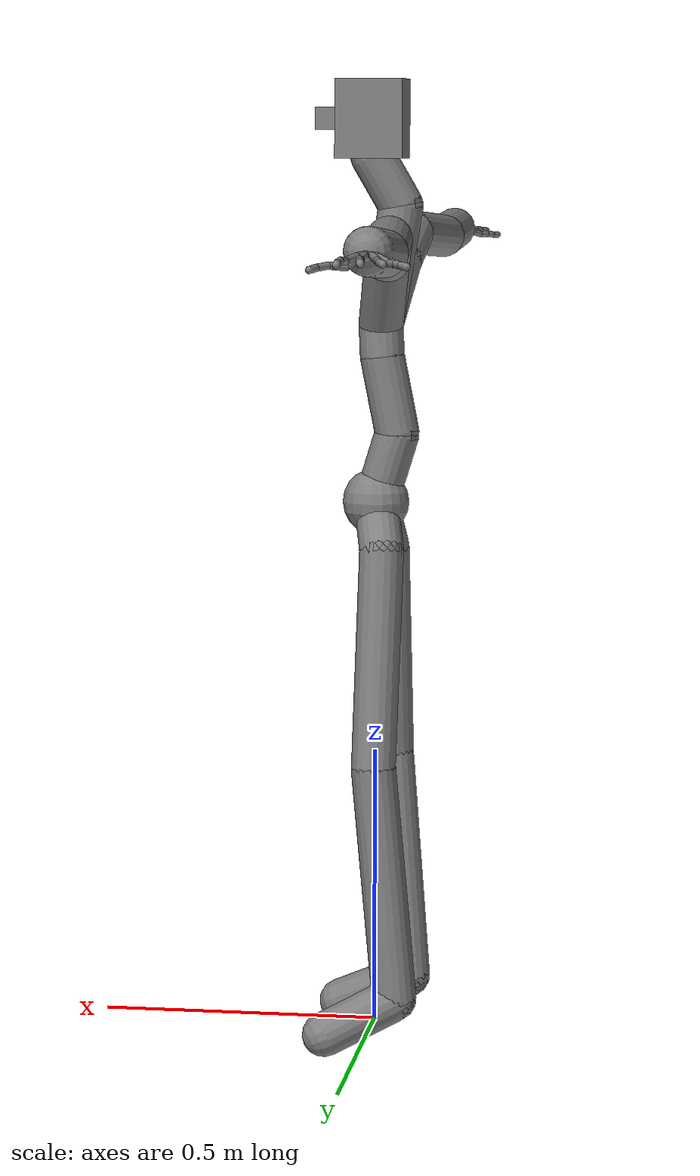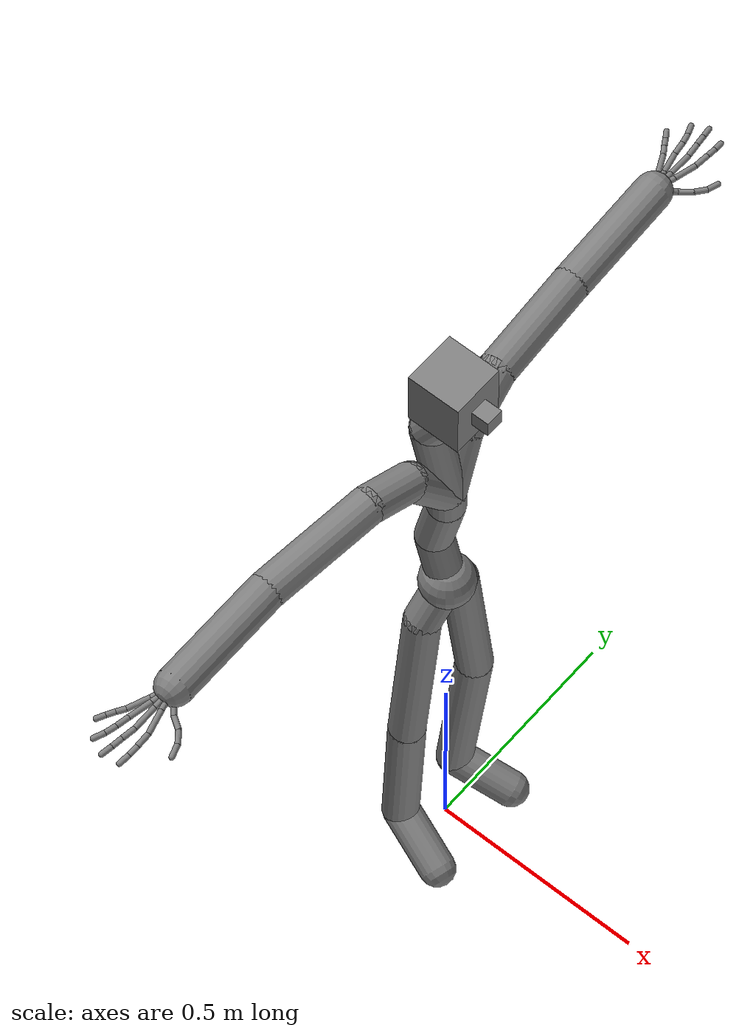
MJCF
<mujoco model="smplh-rig">
    <!--
            Robot Intelligence Lab
            SMPL-H Robot Mini model

            @ Contact us : taemoon-jeong (motor_moon94@korea.ac.kr)
    -->
    <statistic extent="2" center="0 0 1"/>
    <compiler  inertiafromgeom="true" angle="radian" autolimits="true"/>

    <default>
        <site size=".04" group="3"/>
        <motor ctrlrange="-1. 1." ctrllimited="true"/>
        <default class="body">

            <!-- joints -->
            <joint type="hinge" damping="1" stiffness="5" armature=".01" limited="true" solimplimit="0 .99 .01"/>
            <default class="joint_big">
                <joint damping="5" stiffness="10"/>
                <default class="hip_x">
                <joint/>
                </default>
                <default class="hip_z">
                <joint/>
                </default>
                <default class="hip_y">
                <joint axis="0 1 0"/>
                </default>
                <default class="joint_big_stiff">
                <joint stiffness="20"/>
                </default>
            </default>

            <!-- tracking site -->
            <default class="tracking_site">
                <site type="sphere" size="0.027" rgba="1 0 0 1" group="3"/>
            </default>
        </default>
    </default>

    <visual>
        <rgba haze="0.15 0.25 0.35 1"/>
        <quality shadowsize="2048"/>
        <global offwidth="800" offheight="800"/>
    </visual>

    <asset>
        <texture name="texgeom" type="cube" builtin="flat" mark="cross" width="127" height="1278"
            rgb1="0.8 0.6 0.4" rgb2="0.8 0.6 0.4" markrgb="1 1 1" random="0.01"/>
        <material name="matgeom" texture="texgeom" texuniform="true" rgba="0.8 0.6 0.4 1.0"/>
    </asset>

    <worldbody>
        <body name="base" pos="0 0 0.956">
            <freejoint name="base"/>
            <geom name="base" type="sphere" pos="0 0 0" size="0.06"/>
            <body name="pelvis" pos="0 0 0" euler="0 0 0" >
                <joint name="pelvis1" type="hinge" pos="0 0 0" axis="1 0 0" range="-1.5 1.5" armature="0.02" class="joint_big"/>
                <joint name="pelvis2" type="hinge" pos="0 0 0" axis="0 1 0" range="-1.5 1.5" armature="0.02" class="joint_big"/>
                <joint name="pelvis3" type="hinge" pos="0 0 0" axis="0 0 1" range="-1.5 1.5" armature="0.02" class="joint_big_stiff"/>
                <geom name="pelvis2spine1" type="capsule" fromto="0 0 0 -0.038385 0.004439 0.124404"  size="0.04"/>
                <site name="pelvis2spine1" type="capsule" fromto="0 0 0 -0.038385 0.004439 0.124404"  size="0.04" />

                <body name="spine1" pos="-0.038385 0.004439 0.124406" euler="0 0 0" >
                    <geom name="spine12spine2" type="capsule" fromto="0 0 0 0.026820 0.004488 0.137956"  size="0.04"/>
                    <joint name="spine1x" type="hinge" pos="0 0 0" axis="1 0 0" range="-1.5 1.5" armature="0.02" class="joint_big" />
                    <joint name="spine1y" type="hinge" pos="0 0 0" axis="0 1 0" range="-1.5 1.5" armature="0.02" class="joint_big" />
                    <joint name="spine1z" type="hinge" pos="0 0 0" axis="0 0 1" range="-1.5 1.5" armature="0.02" class="joint_big" />

                    <body name="spine2" pos="0.026820 0.004488 0.137956" euler="0 0 0">
                        <geom name="spine22spine3" type="capsule" fromto="0 0 0 0.002855 -0.002265 0.056032"  size="0.04"/>
                        <site name="spine22spine3" type="capsule" fromto="0 0 0 0.002855 -0.002265 0.056032"  size="0.04" />
                        <joint name="spine2x" type="hinge" pos="0 0 0" axis="1 0 0" range="-1.5 1.5" armature="0.02" class="joint_big" />
                        <joint name="spine2y" type="hinge" pos="0 0 0" axis="0 1 0" range="-1.5 1.5" armature="0.02" class="joint_big" />
                        <joint name="spine2z" type="hinge" pos="0 0 0" axis="0 0 1" range="-1.5 1.5" armature="0.02" class="joint_big" />

                        <body name="spine3" pos="0.002855 -0.002265 0.056032" euler="0 0 0">
                            <geom name="spine32neck" type="capsule" fromto="0 0 0 -0.033468 -0.013390 0.211635"  size="0.04"/>
                            <site name="spine32neck" type="capsule" fromto="0 0 0 -0.033468 -0.013390 0.211635"  size="0.04" />
                            <joint name="spine3x" type="hinge" pos="0 0 0" axis="1 0 0" range="-1.5 1.5" armature="0.02" class="joint_big" />
                            <joint name="spine3y" type="hinge" pos="0 0 0" axis="0 1 0" range="-1.5 1.5" armature="0.02" class="joint_big" />
                            <joint name="spine3z" type="hinge" pos="0 0 0" axis="0 0 1" range="-1.5 1.5" armature="0.02" class="joint_big" />

                            <body name="neck" pos="-0.033468 -0.013390 0.211635" euler="0 0 0">
                                <geom name="neck2head" type="capsule" fromto="0 0 0 0.050410 0.010113 0.088937"  size="0.04" />

                                <body name="head" pos="0.050410 0.010113 0.088937" euler="0 0 0">
                                    <site name="head" type="box" pos="0 0  0.06496965885" size="0.06 0.06 0.07" />
                                    <geom name="head" type="box" pos="0 0  0.06496965885" size="0.06 0.06 0.07" />
                                    <geom name="nose" type="box" pos="0.05 0  0.06496965885" size="0.05 0.02 0.02" />
                                    <joint name="head1" type="hinge" pos="0 0 0" axis="1 0 0" range="-1.57 1.57" armature="0.02" />
                                    <joint name="head2" type="hinge" pos="0 0 0" axis="0 1 0" range="-1.57 1.57" armature="0.02" />
                                    <joint name="head3" type="hinge" pos="0 0 0" axis="0 0 1" range="-1.57 1.57" armature="0.02" />
                                </body>
                            </body>

                            <geom name="spine32lcollar" type="capsule" fromto="0 0 0 -0.018898 0.071702 0.114000"  size="0.04" />
                            <body name="left_collar" pos="-0.018898 0.071702 0.114000" euler="0 0 0">
                                <geom name="lcollar2lshoulder" type="capsule" fromto="0 0 0 -0.019046 0.122921 0.045205"  size="0.04" />
                                <joint name="l_collar" type="hinge" pos="0 0 0" axis="1 0 0" range="-3.141592 3.141592" armature="0.0068"  />

                                <body name="left_shoulder" pos="-0.019046 0.122921 0.045205" euler="0 0 0">
                                    <geom name="lshoulder2lelbow" type="capsule" fromto="0 0 0 -0.022946 0.255332 -0.015649"  size="0.04" />
                                    <joint name="l_shoulder1" type="hinge" pos="0 0 0" axis="1 0 0" range="-3.141592 3.141592" armature="0.0068"  />
                                    <joint name="l_shoulder2" type="hinge" pos="0 0 0" axis="0 0 1" range="-3.141592 3.141592" armature="0.0051"  />
                                    <joint name="l_shoulder3" type="hinge" pos="0 0 0" axis="0 1 0" range="-3.141592 3.141592" armature="0.0051"  />

                                    <body name="left_elbow" pos="-0.022946 0.255332 -0.015649" euler="0 0 0">
                                        <geom name="lelbow2lwrist" type="capsule" fromto="0 0 0 -0.007375 0.265709 0.012698"  size="0.04" />
                                        <joint name="l_elbow" type="hinge" pos="0 0 0" axis="0 0 1" range="-2.61666666667 -0.01" armature="0.0028"  />
                                        <site name="tracking[lhand]" class="tracking_site" pos="-0.007375 0.265709 0.012698" />
                                        <body name="left_wrist" pos="-0.007375 0.265709 0.012698" euler="0 0 0">
                                            <geom name="lwrist2lindex0" type="capsule" fromto="0 0 0 0.011069 0.052936 -0.005513"  size="0.006" />
                                            <geom name="lwrist2lmiddle0" type="capsule" fromto="0 0 0 -0.001014 0.056910 -0.003942"  size="0.006" />
                                            <geom name="lwrist2lpinky0" type="capsule" fromto="0 0 0 -0.022191 0.043901 -0.007416"  size="0.006" />
                                            f<geom name="lwrist2lring0" type="capsule" fromto="0 0 0 -0.013294 0.050768 -0.004992"  size="0.006" />
                                            <geom name="lwrist2lthumb1" type="capsule" fromto="0 0 0 0.028838 0.042275 -0.023086"  size="0.006" />

                                            <joint name="l_wrist1" type="hinge" pos="0 0 0" axis="0 1 0" range="-1.570796 1.570796" damping="5" stiffness="0" armature="0.02" />
                                            <joint name="l_wrist2" type="hinge" pos="0 0 0" axis="0 0 1" range="-0.785398 0.785398" damping="5" stiffness="0" armature="0.02" />
                                            <joint name="l_wrist3" type="hinge" pos="0 0 0" axis="1 0 0" range="-0.785398 0.785398" damping="5" stiffness="0" armature="0.02" />

                                            <body name="left_index0" pos="0.011069 0.052936 -0.005513" euler="0 0 0">
                                                <geom name="lindex0-lindex1" type="capsule" fromto="0 0 0 0.011069 0.052936 -0.005513"  size="0.006" />
                                                <body name="left_index1" pos="0.011069 0.052936 -0.005513" euler="0 0 -0.206141">
                                                    <geom name="lindex1-lindex2" type="capsule" fromto="0 0 0 -0.003033 0.033130 0.001728"  size="0.006" />
                                                    <joint name="l_indexr" type="hinge" pos="0 0 0" axis="0 0 1" range="-0.261799 0.261799" damping="5" stiffness="0" armature="0.02" />
                                                    <joint name="l_index1" type="hinge" pos="0 0 0" axis="1 0 0" range="-0.628318 0" damping="5" stiffness="0" armature="0.02" />

                                                    <body name="left_index2" pos="-0.003033 0.033130 0.001728" euler="0 0 0.091304">
                                                        <geom name="lindex2-lindex3" type="capsule" fromto="0 0 0 -0.001843 0.023182 -0.002789"  size="0.006" />
                                                        <joint name="l_index2" type="hinge" pos="0 0 0" axis="1 0 0" range="-1.884955 0" damping="5" stiffness="0" armature="0.02" />

                                                        <body name="left_index3" pos="-0.001843 0.023182 -0.002789" euler="0 0 0.079354">
                                                            <!-- temporary geom value for finger tip -->
                                                            <geom name="lindex3-lindextip" type="capsule" fromto="0 0 0 -0.0015 0.02 -0.0025"  size="0.006" />
                                                            <joint name="l_index3" type="hinge" pos="0 0 0" axis="1 0 0" range="-1.256637 0" damping="5" stiffness="0" armature="0.02" />
                                                            <body name="left_index4" pos="-0.0015 0.02 -0.0025" euler="0 0 0"/>
                                                        </body>
                                                    </body>
                                                </body>
                                            </body>
                                            <body name="left_middle0" pos="-0.001014 0.056910 -0.003942" euler="0 0 0">
                                                <geom name="lmiddle0-lmiddle1" type="capsule" fromto="0 0 0 -0.001014 0.056910 -0.003942"  size="0.006" />
                                                <body name="left_middle1" pos="-0.001014 0.056910 -0.003942" euler="0 0 0.017807">
                                                    <geom name="lmiddle1-lmiddle2" type="capsule" fromto="0 0 0 -0.003115 0.031998 0.000394"  size="0.006" />
                                                    <joint name="l_middle1" type="hinge" pos="0 0 0" axis="1 0 0" range="-0.628318 0" damping="5" stiffness="0" armature="0.02" />

                                                    <body name="left_middle2" pos="-0.003115 0.031998 0.000394" euler="0 0 0.097038">
                                                        <geom name="lmiddle2-lmiddle3" type="capsule" fromto="0 0 0 -0.000460 0.024696 -0.002376"  size="0.006" />
                                                        <joint name="l_middle2" type="hinge" pos="0 0 0" axis="1 0 0" range="-1.884955 0" damping="5" stiffness="0" armature="0.02" />

                                                        <body name="left_middle3" pos="-0.000460 0.024696 -0.002376" euler="0 0 0.018625">
                                                            <geom name="lmiddl3-lmiddletip" type="capsule" fromto="0 0 0 -0.00045 0.024 -0.0023"  size="0.006" />
                                                            <joint name="l_middle3" type="hinge" pos="0 0 0" axis="1 0 0" range="-1.256637 0" damping="5" stiffness="0" armature="0.02" />
                                                            <body name="left_middle4" pos="-0.00045 0.024 -0.0023" euler="0 0 0"/>
                                                        </body>
                                                    </body>
                                                </body>
                                            </body>
                                            <body name="left_pinky0" pos="-0.022191 0.043901 -0.007416" euler="0 0 0">
                                                <geom name="lpinky0-lpinky1" type="capsule" fromto="0 0 0 -0.022191 0.043901 -0.007416"  size="0.006" />
                                                <body name="left_pinky1" pos="-0.022191 0.043901 -0.007416" euler="0 0 0.468016">
                                                    <geom name="lpinky1-lpinky2" type="capsule" fromto="0 0 0 -0.002127 0.020411 -0.000227"  size="0.006" />
                                                    <joint name="l_pinkyr" type="hinge" pos="0 0 0" axis="0 0 1" range="-0.523597 0.523597" damping="5" stiffness="0" armature="0.02" />
                                                    <joint name="l_pinky1" type="hinge" pos="0 0 0" axis="1 0 0" range="-0.628318 0" damping="5" stiffness="0" armature="0.02" />

                                                    <body name="left_pinky2" pos="-0.002127 0.020411 -0.000227" euler="0 0 0.103822">
                                                        <geom name="lpinky2-lpinky3" type="capsule" fromto="0 0 0 0.000708 0.019815 -0.001496"  size="0.006" />
                                                        <joint name="l_pinky2" type="hinge" pos="0 0 0" axis="1 0 0" range="-1.884955 0" damping="5" stiffness="0" armature="0.02" />

                                                        <body name="left_pinky3" pos="0.000708 0.019815 -0.001496" euler="0 0 -0.035726">
                                                            <geom name="lpinky3-lpinkytip" type="capsule" fromto="0 0 0 -0.0007 0.02 -0.0015"  size="0.006" />
                                                            <joint name="l_pinky3" type="hinge" pos="0 0 0" axis="1 0 0" range="-1.256637 0" damping="5" stiffness="0" armature="0.02" />
                                                            <body name="left_pinky4" pos="-0.0007 0.02 -0.0015" euler="0 0 0"/>
                                                        </body>
                                                    </body>
                                                </body>
                                            </body>
                                            <body name="left_ring0" pos="-0.013294 0.050768 -0.004992" euler="0 0 0">
                                                <geom name="lring0-lring1" type="capsule" fromto="0 0 0 -0.013294 0.050768 -0.004992"  size="0.006" />
                                                <body name="left_ring1" pos="-0.013294 0.050768 -0.004992" euler="0 0 0.256105">
                                                    <geom name="lring1-lring2" type="capsule" fromto="0 0 0 0.003936 0.029493 0.001011"  size="0.006" />
                                                    <joint name="l_ringr" type="hinge" pos="0 0 0" axis="0 0 1" range="-0.261799 0.261799" damping="5" stiffness="0" armature="0.02" />
                                                    <joint name="l_ring1" type="hinge" pos="0 0 0" axis="1 0 0" range="-0.628318 0" damping="5" stiffness="0" armature="0.02" />

                                                    <body name="left_ring2" pos="0.003936 0.029493 0.001011" euler="0 0 -0.132684">
                                                        <geom name="lring2-lring3" type="capsule" fromto="0 0 0 -0.003050 0.024423 -0.002075"  size="0.006" />
                                                        <joint name="l_ring2" type="hinge" pos="0 0 0" axis="1 0 0" range="-1.884955 0" damping="5" stiffness="0" armature="0.02" />

                                                        <body name="left_ring3" pos="-0.003050 0.024423 -0.002075" euler="0 0 0.124218">
                                                            <geom name="lring3-lringtip" type="capsule" fromto="0 0 0 -0.003 0.024 -0.002"  size="0.006" />
                                                            <joint name="l_ring3" type="hinge" pos="0 0 0" axis="1 0 0" range="-1.256637 0" damping="5" stiffness="0" armature="0.02" />
                                                            <body name="left_ring4" pos="-0.003 0.024 -0.002" euler="0 0 0"/>
                                                        </body>
                                                    </body>
                                                </body>
                                            </body>

                                            <body name="left_thumb1" pos="0.028838 0.042275 -0.023086" euler="0 0 0">
                                                <geom name="lthumb1-lthumb2" type="capsule" fromto="0 0 0 0.025959 0.018387 0.003174"  size="0.006" />
                                                <joint name="l_thumba" type="hinge" pos="0 0 0" axis="0 1 0" range="0 1.570796" damping="5" stiffness="0" armature="0.02" />
                                                    <joint name="l_thumbr" type="hinge" pos="0 0 0" axis="0 0 1" range="-0.523597 0.523597" damping="5" stiffness="0" armature="0.02" />

                                                    <body name="left_thumb2" pos="0.025959 0.018387 0.003174" euler="0 0 -0.954515">
                                                        <geom name="lthumb2-lthumb3" type="capsule" fromto="0 0 0 -0.009025 0.025780 -0.002574"  size="0.006" />
                                                        <joint name="l_thumb2" type="hinge" pos="0 0 0" axis="1 0 0" range="-1.831667 0" damping="5" stiffness="0" armature="0.02" />

                                                        <body name="left_thumb3" pos="-0.009025 0.025780 -0.002574" euler="0 0 0.336747">
                                                            <geom name="lthumb3-lthumbtip" type="capsule" fromto="0 0 0 -0.009 0.025 -0.0025"  size="0.006" />
                                                            <joint name="l_thumb3" type="hinge" pos="0 0 0" axis="1 0 0" range="-1.831667 0" damping="5" stiffness="0" armature="0.02" />
                                                            <body name="left_thumb4" pos="-0.009 0.025 -0.0025" euler="0 0 0"/>
                                                        </body>
                                                    </body>
                                            </body>
                                        </body>
                                    </body>
                                </body>
                            </body>

                            <geom name="spine2rcollar" type="capsule" fromto="0 0 0 -0.023707 -0.082954 0.112472"  size="0.04" />
                            <body name="right_collar" pos="-0.023707 -0.082954 0.112472" euler="0 0 0">
                                <geom name="rcollar2rshoulder" type="capsule" fromto="0 0 0 -0.008472 -0.113228 0.046853"  size="0.04" />
                                <joint name="r_collar" type="hinge" pos="0 0 0" axis="1 0 0" range="-3.141592 3.141592" armature="0.0068"  />

                                <body name="right_shoulder" pos="-0.008472 -0.113228 0.046853" euler="0 0 0">
                                    <geom name="rshoulder2relbow" type="capsule" fromto="0 0 0 -0.031269 -0.260127 -0.014369"  size="0.04" />
                                    <joint name="r_shoulder1" type="hinge" pos="0 0 0" axis="1 0 0" range="-3.141592 3.141592" armature="0.0068"  />
                                    <joint name="r_shoulder2" type="hinge" pos="0 0 0" axis="0 0 1" range="-3.141592 3.141592" armature="0.0051"  />
                                    <joint name="r_shoulder3" type="hinge" pos="0 0 0" axis="0 1 0" range="-3.141592 3.141592" armature="0.0051"  />

                                    <body name="right_elbow" pos="-0.031269 -0.260127 -0.014369" euler="0 0 0">
                                        <geom name="relbow2rwrist" type="capsule" fromto="0 0 0 0.006027 -0.269108 0.006794"  size="0.04" />
                                        <joint name="r_elbow" type="hinge" pos="0 0 0" axis="0 0 1" range="0.01 2.61666666667" armature="0.0028"  />
                                        <site name="tracking[rhand]" class="tracking_site" pos="0.006027 -0.269108 0.006794" />
                                        <body name="right_wrist" pos="0.006027 -0.269108 0.006794" euler="0 0 0">
                                            <geom name="rwrist2rindex0" type="capsule" fromto="0 0 0 0.013122 -0.052049 -0.004405"  size="0.006" />
                                            <geom name="rwrist2rmiddle0" type="capsule" fromto="0 0 0 0.000400 -0.056364 -0.002474"  size="0.006" />
                                            <geom name="rwrist2rpinky0" type="capsule" fromto="0 0 0 -0.021231 -0.043954 -0.006724"  size="0.006" />
                                            <geom name="rwrist2rring0" type="capsule" fromto="0 0 0 -0.012381 -0.050571 -0.003757"  size="0.006" />
                                            <geom name="rwrist2rthumb1" type="capsule" fromto="0 0 0 0.032093 -0.039326 -0.022098"  size="0.006" />

                                            <joint name="r_wrist1" type="hinge" pos="0 0 0" axis="0 1 0" range="-1.570796 1.570796" damping="5" stiffness="0" armature="0.02" />
                                            <joint name="r_wrist2" type="hinge" pos="0 0 0" axis="0 0 1" range="-0.785398 0.785398" damping="5" stiffness="0" armature="0.02" />
                                            <joint name="r_wrist3" type="hinge" pos="0 0 0" axis="1 0 0" range="-0.785398 0.785398" damping="5" stiffness="0" armature="0.02" />

                                            <body name="right_index0" pos="0.013122 -0.052049 -0.004405" euler="0 0 0">
                                                <geom name="rindex0-rindex1" type="capsule" fromto="0 0 0 0.013122 -0.052049 -0.004405"  size="0.006" />
                                                <body name="right_index1" pos="0.013122 -0.052049 -0.004405" euler="0 0 0.246960">
                                                    <geom name="rindex1-rindex2" type="capsule" fromto="0 0 0 -0.005775 -0.033242 0.002660"  size="0.006" />
                                                    <joint name="r_indexr" type="hinge" pos="0 0 0" axis="0 0 1" range="-0.261799 0.261799" damping="5" stiffness="0" armature="0.02" />
                                                    <joint name="r_index1" type="hinge" pos="0 0 0" axis="1 0 0" range="0 0.628318" damping="5" stiffness="0" armature="0.02" />

                                                    <body name="right_index2" pos="-0.005775 -0.033242 0.002660" euler="0 0 -0.172022">
                                                        <geom name="rindex2-rindex3" type="capsule" fromto="0 0 0 -0.002271 -0.023192 -0.002289"  size="0.006" />
                                                        <joint name="r_index2" type="hinge" pos="0 0 0" axis="1 0 0" range="0 1.884955" damping="5" stiffness="0" armature="0.02" />

                                                        <body name="right_index3" pos="-0.002271 -0.023192 -0.002289" euler="0 0 -0.097597">
                                                            <geom name="rindex3-rindextip" type="capsule" fromto="0 0 0 -0.0022 -0.0232 -0.0022"  size="0.006" />
                                                            <joint name="r_index3" type="hinge" pos="0 0 0" axis="1 0 0" range="0 1.256637" damping="5" stiffness="0" armature="0.02" />
                                                            <body name="right_index4" pos="-0.0022 -0.0232 -0.0022" euler="0 0 0"/>
                                                        </body>

                                                    </body>
                                                </body>
                                            </body>

                                            <body name="right_middle0" pos="0.000400 -0.056364 -0.002474" euler="0 0 0">
                                                <geom name="rmiddle0-rmiddle1" type="capsule" fromto="0 0 0 0.000400 -0.056364 -0.002474"  size="0.006" />
                                                <body name="right_middle1" pos="0.000400 -0.056364 -0.002474" euler="0 0 0.007097">
                                                    <geom name="rmiddle1-rmiddle2" type="capsule" fromto="0 0 0 -0.004165 -0.031760 0.001475"  size="0.006" />
                                                    <joint name="r_middle1" type="hinge" pos="0 0 0" axis="1 0 0" range="0 0.628318" damping="5" stiffness="0" armature="0.02" />

                                                    <body name="right_middle2" pos="-0.004165 -0.031760 0.001475" euler="0 0 -0.130410">
                                                        <geom name="rmiddle2-rmiddle3" type="capsule" fromto="0 0 0 -0.000753 -0.024398 -0.001846"  size="0.006" />
                                                        <joint name="r_middle2" type="hinge" pos="0 0 0" axis="1 0 0" range="0 1.884955" damping="5" stiffness="0" armature="0.02" />

                                                        <body name="right_middle3" pos="-0.000753 -0.024398 -0.001846" euler="0 0 -0.030843">
                                                            <geom name="rmiddle3-rmiddletip" type="capsule" fromto="0 0 0 -0.00075 -0.024 -0.0018"  size="0.006" />
                                                            <joint name="r_middle3" type="hinge" pos="0 0 0" axis="1 0 0" range="0 1.256637" damping="5" stiffness="0" armature="0.02" />
                                                            <body name="right_middle4" pos="-0.00075 -0.024 -0.0018" euler="0 0 0"/>
                                                        </body>
                                                    </body>
                                                </body>
                                            </body>

                                            <body name="right_pinky0" pos="-0.021231 -0.043954 -0.006724" euler="0 0 0">
                                                <geom name="rpinky0-rpinky1" type="capsule" fromto="0 0 0 -0.021231 -0.043954 -0.006724"  size="0.006" />
                                                <body name="right_pinky1" pos="-0.021231 -0.043954 -0.006724" euler="0 0 -0.449973">
                                                    <geom name="rpinky1-rpinky2" type="capsule" fromto="0 0 0 -0.002934 -0.020111 -0.000602"  size="0.006" />
                                                    <joint name="r_pinkyr" type="hinge" pos="0 0 0" axis="0 0 1" range="-0.523597 0.523597" damping="5" stiffness="0" armature="0.02" />
                                                    <joint name="r_pinky1" type="hinge" pos="0 0 0" axis="1 0 0" range="0 0.628318" damping="5" stiffness="0" armature="0.02" />

                                                    <body name="right_pinky2" pos="-0.002934 -0.020111 -0.000602" euler="0 0 -0.144866">
                                                        <geom name="rpinky2-rpinky3" type="capsule" fromto="0 0 0 0.000825 -0.019561 -0.001585"  size="0.006" />
                                                        <joint name="r_pinky2" type="hinge" pos="0 0 0" axis="1 0 0" range="0 1.884955" damping="5" stiffness="0" armature="0.02" />

                                                        <body name="right_pinky3" pos="0.000825 -0.019561 -0.001585" euler="0 0 0.042174">
                                                            <geom name="rpinky3-rpinkytip" type="capsule" fromto="0 0 0 0.0008 -0.019 -0.0015"  size="0.006" />
                                                            <joint name="r_pinky3" type="hinge" pos="0 0 0" axis="1 0 0" range="0 1.256637" damping="5" stiffness="0" armature="0.02" />
                                                            <body name="right_pinky4" pos="0.0008 -0.019 -0.0015" euler="0 0 0"/>
                                                        </body>
                                                    </body>
                                                </body>
                                            </body>

                                            <body name="right_ring0" pos="-0.012381 -0.050571 -0.003757" euler="0 0 0">
                                                <geom name="rring0-rring1" type="capsule" fromto="0 0 0 -0.012381 -0.050571 -0.003757"  size="0.006" />
                                                <body name="right_ring1" pos="-0.012381 -0.050571 -0.003757" euler="0 0 -0.240111">
                                                    <geom name="rring1-rring2" type="capsule" fromto="0 0 0 0.002434 -0.029381 0.002022"  size="0.006" />
                                                    <joint name="r_ringr" type="hinge" pos="0 0 0" axis="0 0 1" range="-0.261799 0.261799" damping="5" stiffness="0" armature="0.02" />
                                                    <joint name="r_ring1" type="hinge" pos="0 0 0" axis="1 0 0" range="0 0.628318" damping="5" stiffness="0" armature="0.02" />

                                                    <body name="right_ring2" pos="0.002434 -0.029381 0.002022" euler="0 0 0.082652">
                                                        <geom name="rring2-rring3" type="capsule" fromto="0 0 0 -0.003248 -0.024364 -0.001806"  size="0.006" />
                                                        <joint name="r_ring2" type="hinge" pos="0 0 0" axis="1 0 0" range="0 1.884955" damping="5" stiffness="0" armature="0.02" />

                                                        <body name="right_ring3" pos="-0.003248 -0.024364 -0.001806" euler="0 0 -0.132521">
                                                            <geom name="rring3-rringtip" type="capsule" fromto="0 0 0 -0.0032 -0.024 -0.0018"  size="0.006" />
                                                            <joint name="r_ring3" type="hinge" pos="0 0 0" axis="1 0 0" range="0 1.256637" damping="5" stiffness="0" armature="0.02" />
                                                            <body name="right_ring4" pos="-0.0032 -0.024 -0.0018" euler="0 0 0"/>
                                                        </body>
                                                    </body>
                                                </body>
                                            </body>

                                            <body name="right_thumb1" pos="0.032093 -0.039326 -0.022098" euler="0 0 0">
                                                <geom name="rthumb1-rthumb2" type="capsule" fromto="0 0 0 0.026988 -0.017556 0.001146"  size="0.006" />
                                                <joint name="r_thumba" type="hinge" pos="0 0 0" axis="0 1 0" range="0 1.570796" damping="5" stiffness="0" armature="0.02" />
                                                    <joint name="r_thumbr" type="hinge" pos="0 0 0" axis="0 0 1" range="-0.523597 0.523597" damping="5" stiffness="0" armature="0.02" />

                                                    <body name="right_thumb2" pos="0.026988 -0.017556 0.001146" euler="0 0 0.994062">
                                                        <geom name="rthumb2-rthumb3" type="capsule" fromto="0 0 0 -0.009379 -0.025674 -0.004803"  size="0.006" />
                                                        <joint name="r_thumb2" type="hinge" pos="0 0 0" axis="1 0 0" range="0 1.831667" damping="5" stiffness="0" armature="0.02" />

                                                        <body name="right_thumb3" pos="-0.009379 -0.025674 -0.004803" euler="0 0 -0.350253">
                                                            <geom name="rthumb3-rthumbtip" type="capsule" fromto="0 0 0 -0.0093 -0.025 -0.0048"  size="0.006" />
                                                            <joint name="r_thumb3" type="hinge" pos="0 0 0" axis="1 0 0" range="-1.831667 0" damping="5" stiffness="0" armature="0.02" />
                                                            <body name="right_thumb4" pos="-0.0093 -0.025 -0.0048" euler="0 0 0"/>
                                                        </body>
                                                    </body>
                                            </body>
                                        </body>
                                    </body>
                                </body>
                            </body>
                        </body>
                    </body>
                </body>
            </body>
            <site name="tracking[pelvis]" class="tracking_site" pos="0 0 0.075" size=".05" />
            <geom name="base2lpelvis" type="capsule" fromto="0 0 0 -0.017664 0.058581 -0.082280"  size="0.04" />
            <geom name="base2rpelvis" type="capsule" fromto="0 0 0 -0.013543 -0.060310 -0.090513"  size="0.04" />
            <site name="pelvis_site" pos="0 0 0" size="0.01"/>

            <body name="left_hip" pos="-0.017664 0.058581 -0.082280" euler="0 0 0">
                <geom name="lhip2lknee" type="capsule" fromto="0 0 0 0.008037 0.043451 -0.386469"  size="0.04" />
                <site name="lhip2lknee" type="capsule" fromto="0 0 0 0.008037 0.043451 -0.386469"  size="0.04" />
                <joint name="l_hip1" type="hinge" pos="0 0 0" axis="1 0 0" range="-0.3 0.3" armature="0.01" class="hip_x"/>
                <joint name="l_hip2" type="hinge" pos="0 0 0" axis="0 1 0" range="-1.5 0.3" armature="0.01" class="hip_y"/>
                <joint name="l_hip3" type="hinge" pos="0 0 0" axis="0 0 1" range="-0.5 0.3" armature="0.01" class="hip_z"/>
                <body name="left_knee" pos="0.008037 0.043451 -0.386469" euler="0 0 0">
                    <geom name="lknee2lankle" type="capsule" fromto="0 0 0 -0.037428 -0.014790 -0.426874"  size="0.04" />
                    <site name="lknee2lankle" type="capsule" fromto="0 0 0 -0.037428 -0.014790 -0.426874"  size="0.04" />
                    <joint name="l_knee" type="hinge" pos="0 0 0" axis="0 1 0" range="0.0175 2.0944" armature="0.0060" />
                    <body name="left_ankle" pos="-0.037428 -0.014790 -0.426874" euler="0 0 0">
                        <site name="lankle" type="box" pos="0 0 -0.025" size="0.03 0.03 0.025" />
                        <geom name="lankle2lfoot" type="capsule" fromto="0 0 0 0.122042 0.041054 -0.060286"  size="0.04" />
                        <body name="left_foot" pos="0.122042 0.041054 -0.060286" euler="0 0 0" />

                        <site name="foot_left" pos="0.122042 0.041054 -0.060286" type="sphere" rgba="0 1 0 1"  size=".027"/>
                        <joint name="l_ankle1" type="hinge" pos="0 0 0" axis="0 1 0" range="-0.3 0.3"  armature="0.0008" />
                        <joint name="l_ankle2" type="hinge" pos="0 0 0" axis="1 0 0" range="-0.3 0.3" armature="0.0006" />
                        <joint name="l_ankle3" type="hinge" pos="0 0 0" axis="0 0 1" range="-0.3 0.3" armature="0.0006" />
                    </body>
                </body>
            </body>

            <body name="right_hip" pos="-0.013543 -0.060310 -0.090513" euler="0 0 0">
                <geom name="rhip2rknee" type="capsule" fromto="0 0 0 -0.004843 -0.043257 -0.383688"  size="0.04" />
                <site name="rhip2rknee" type="capsule" fromto="0 0 0 -0.004843 -0.043257 -0.383688"  size="0.04" />
                <joint name="r_hip1" type="hinge" pos="0 0 0" axis="1 0 0" range="-0.3 0.3" armature="0.01" class="hip_x"/>
                <joint name="r_hip2" type="hinge" pos="0 0 0" axis="0 1 0" range="-1.5 0.3" armature="0.01" class="hip_y"/>
                <joint name="r_hip3" type="hinge" pos="0 0 0" axis="0 0 1" range="-0.5 0.3" armature="0.01" class="hip_z"/>
                <body name="right_knee" pos="-0.004843 -0.043257 -0.383688" euler="0 0 0" >
                    <geom name="rknee2rankle" type="capsule" fromto="0 0 0 -0.034562 0.019056 -0.420046"  size="0.04" />
                    <site name="rknee2rankle" type="capsule" fromto="0 0 0 -0.034562 0.019056 -0.420046"  size="0.04" />
                    <joint name="r_knee" type="hinge" pos="0 0 0" axis="0 1 0" range="0.0175 2.0944" armature="0.0060" />
                    <body name="right_ankle" pos="-0.034562 0.019056 -0.420046" euler="0 0 0">
                        <site name="rankle" type="box" pos="0 0 -0.025" size="0.03 0.03 0.025" />
                        <geom name="rankle2rfoot" type="capsule" fromto="0 0 0 0.130323 -0.034840 -0.062106"  size="0.04" />
                        <body name="right_foot" pos="0.130323 -0.034840 -0.062106" euler="0 0 0" />

                        <site name="foot_right" pos="0.130323 -0.034840 -0.062106" type="sphere" size=".027" rgba="0 1 0 1" />
                        <joint name="r_ankle1" type="hinge" pos="0 0 0" axis="0 1 0" range="-0.3 0.3" armature="0.0008" />
                        <joint name="r_ankle2" type="hinge" pos="0 0 0" axis="1 0 0" range="-0.3 0.3" armature="0.0006" />
                        <joint name="r_ankle3" type="hinge" pos="0 0 0" axis="0 0 1" range="-0.3 0.3" armature="0.0006" />
                    </body>
                </body>
            </body>
        </body>
    </worldbody>

    <actuator>

        <motor name="pelvis1"       gear="40" joint="pelvis1" />
        <motor name="pelvis2"       gear="40" joint="pelvis2" />
        <motor name="pelvis3"       gear="40" joint="pelvis3" />
        <motor name="spine1x"     gear="40" joint="spine1x" />
        <motor name="spine1y"     gear="40" joint="spine1y" />
        <motor name="spine1z"     gear="40" joint="spine1z" />
        <motor name="spine2x"     gear="40" joint="spine2x" />
        <motor name="spine2y"     gear="40" joint="spine2y" />
        <motor name="spine2z"     gear="40" joint="spine2z" />
        <motor name="spine3x"     gear="40" joint="spine3x" />
        <motor name="spine3y"     gear="40" joint="spine3y" />
        <motor name="spine3z"     gear="40" joint="spine3z" />

        <motor name="head1"       gear="20" joint="head1" />
        <motor name="head2"       gear="20" joint="head2" />
        <motor name="head3"       gear="20" joint="head3" />

        <motor name="l_collar"       gear="20" joint="l_collar" />
        <motor name="l_shoulder1"       gear="20" joint="l_shoulder1" />
        <motor name="l_shoulder2"       gear="20" joint="l_shoulder2" />
        <motor name="l_shoulder3"       gear="20" joint="l_shoulder3" />
        <motor name="l_elbow"       gear="40" joint="l_elbow" />
        <motor name="l_wrist1"       gear="20" joint="l_wrist1" />
        <motor name="l_wrist2"       gear="20" joint="l_wrist2" />
        <motor name="l_wrist3"       gear="20" joint="l_wrist3" />

        <motor name="l_indexr"       gear="20" joint="l_indexr" />
        <motor name="l_index1"       gear="20" joint="l_index1" />
        <motor name="l_middle1"       gear="20" joint="l_middle1" />
        <motor name="l_pinkyr"       gear="20" joint="l_pinkyr" />
        <motor name="l_pinky1"       gear="20" joint="l_pinky1" />
        <motor name="l_ring1"       gear="20" joint="l_ring1" />
        <motor name="l_thumbr"       gear="20" joint="l_thumbr" />
        <motor name="l_thumba"       gear="20" joint="l_thumba" />
        <motor name="l_thumb2"       gear="20" joint="l_thumb2" />

        <motor name="r_collar"       gear="20" joint="r_collar" />
        <motor name="r_shoulder1"       gear="20" joint="r_shoulder1" />
        <motor name="r_shoulder2"       gear="20" joint="r_shoulder2" />
        <motor name="r_shoulder3"       gear="20" joint="r_shoulder3" />
        <motor name="r_elbow"       gear="40" joint="r_elbow" />
        <motor name="r_wrist1"       gear="20" joint="r_wrist1" />
        <motor name="r_wrist2"       gear="20" joint="r_wrist2" />
        <motor name="r_wrist3"       gear="20" joint="r_wrist3" />

        <motor name="r_indexr"       gear="20" joint="r_indexr" />
        <motor name="r_index1"       gear="20" joint="r_index1" />
        <motor name="r_middle1"       gear="20" joint="r_middle1" />
        <motor name="r_pinkyr"       gear="20" joint="r_pinkyr" />
        <motor name="r_pinky1"       gear="20" joint="r_pinky1" />
        <motor name="r_ring1"       gear="20" joint="r_ring1" />
        <motor name="r_thumbr"       gear="20" joint="r_thumbr" />
        <motor name="r_thumba"       gear="20" joint="r_thumba" />
        <motor name="r_thumb2"       gear="20" joint="r_thumb2" />

        <motor name="l_hip1"       gear="40" joint="l_hip1" />
        <motor name="l_hip2"       gear="40" joint="l_hip2" />
        <motor name="l_hip3"       gear="40" joint="l_hip3" />
        <motor name="l_knee"       gear="100" joint="l_knee" />
        <motor name="l_ankle1"       gear="20" joint="l_ankle1" />
        <motor name="l_ankle2"       gear="20" joint="l_ankle2" />
        <motor name="l_ankle3"       gear="20" joint="l_ankle3" />

        <motor name="r_hip1"       gear="40" joint="r_hip1" />
        <motor name="r_hip2"       gear="40" joint="r_hip2" />
        <motor name="r_hip3"       gear="40" joint="r_hip3" />
        <motor name="r_knee"       gear="100" joint="r_knee" />
        <motor name="r_ankle1"       gear="20" joint="r_ankle1" />
        <motor name="r_ankle2"       gear="20" joint="r_ankle2" />
        <motor name="r_ankle3"       gear="20" joint="r_ankle3" />
    </actuator>

    <!-- exclude -->
    <contact>
        <exclude body1="neck" body2="right_shoulder"/>
        <exclude body1="neck" body2="right_collar"/>
        <exclude body1="spine3" body2="right_shoulder"/>
        <exclude body1="spine3" body2="right_collar"/>
        <exclude body1="right_shoulder" body2="right_elbow"/>
        <exclude body1="right_elbow" body2="right_wrist"/>

        <exclude body1="neck" body2="spine3"/>
        <exclude body1="spine2" body2="spine3"/>
        <exclude body1="spine1" body2="spine2"/>
        <exclude body1="spine1" body2="spine3"/>
        <exclude body1="neck" body2="spine2"/>

        <exclude body1="neck" body2="left_shoulder"/>
        <exclude body1="neck" body2="left_collar"/>
        <exclude body1="spine3" body2="left_shoulder"/>
        <exclude body1="spine3" body2="left_collar"/>
        <exclude body1="left_shoulder" body2="left_elbow"/>
        <exclude body1="left_elbow" body2="left_wrist"/>

        <exclude body1="neck" body2="spine3"/>
        <exclude body1="spine1" body2="pelvis"/>
        <exclude body1="pelvis" body2="base"/>

        <exclude body1="base" body2="right_hip"/>
        <exclude body1="pelvis" body2="right_hip"/>
        <exclude body1="right_hip" body2="right_knee"/>
        <exclude body1="right_knee" body2="right_ankle"/>

        <exclude body1="base" body2="left_hip"/>
        <exclude body1="pelvis" body2="left_hip"/>
        <exclude body1="left_hip" body2="left_knee"/>
        <exclude body1="left_knee" body2="left_ankle"/>
    </contact>

</mujoco>
